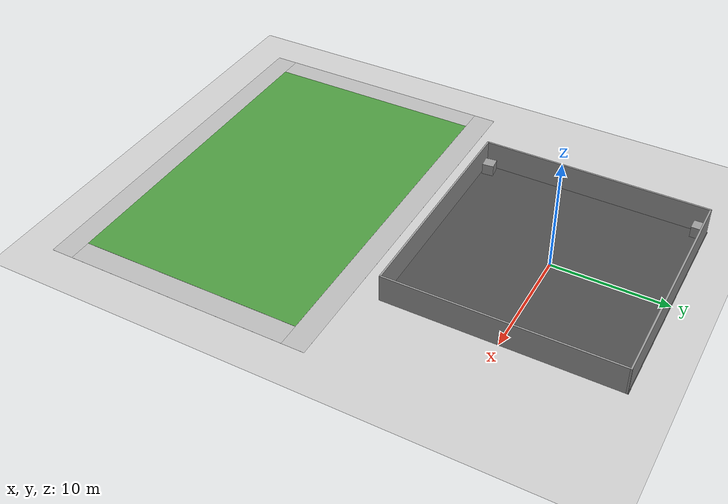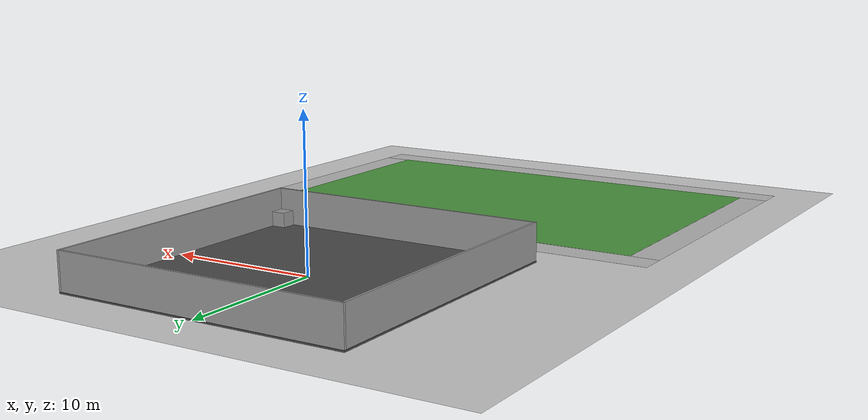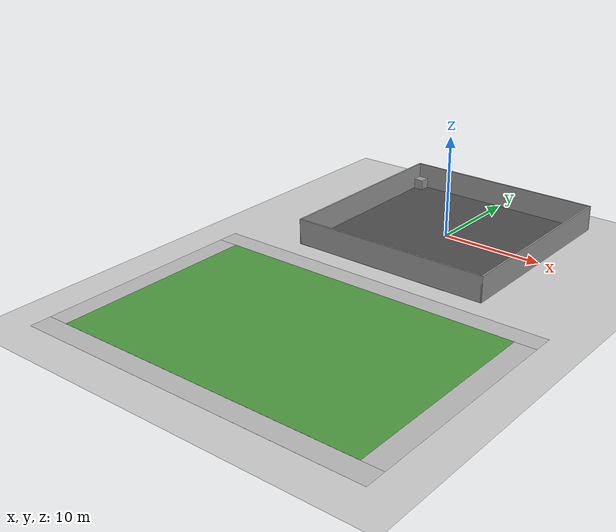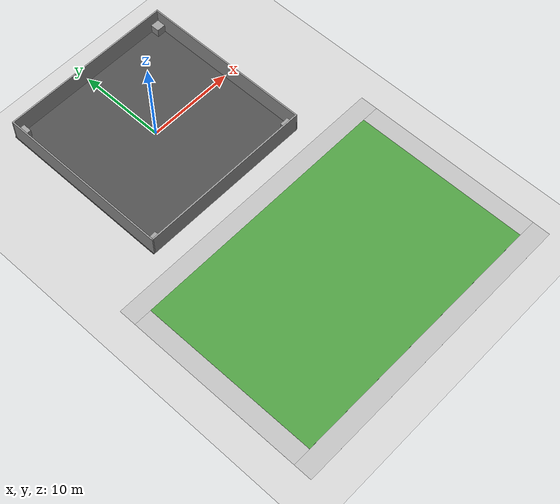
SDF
<sdf version="1.7">
 <world name="default">
  <light name="sun" type="directional">
   <pose>0 0 10 0 -0 0</pose>
   <diffuse>0.8 0.8 0.8 1</diffuse>
   <specular>0.2 0.2 0.2 1</specular>
   <attenuation>
    <range>1000</range>
    <constant>0.9</constant>
    <linear>0.01</linear>
    <quadratic>0.001</quadratic>
   </attenuation>
   <direction>-0.5 0.1 -0.9</direction>
   <spot><inner_angle>0</inner_angle><outer_angle>0</outer_angle><falloff>0</falloff></spot>
  </light>
  <model name="ground_plane">
   <static>1</static>
   <link name="link">
    <collision name="collision">
     <geometry><plane><normal>0 0 1</normal><size>100 100</size></plane></geometry>
     <surface><friction><ode><mu>100</mu><mu2>50</mu2></ode></friction></surface>
    </collision>
    <visual name="visual">
     <cast_shadows>0</cast_shadows>
     <geometry><plane><normal>0 0 1</normal><size>100 100</size></plane></geometry>
     <material>
      <script><uri>file://media/materials/scripts/gazebo.material</uri><name>Gazebo/Grey</name></script>
     </material>
    </visual>
   </link>
  </model>
  <gravity>0 0 -9.8</gravity>
  <magnetic_field>6e-06 2.3e-05 -4.2e-05</magnetic_field>
  <atmosphere type="adiabatic"/>
  <physics type="ode">
   <max_step_size>0.001</max_step_size>
   <real_time_factor>1</real_time_factor>
   <real_time_update_rate>1000</real_time_update_rate>
  </physics>
  <scene><ambient>0.4 0.4 0.4 1</ambient><background>0.7 0.7 0.7 1</background><shadows>1</shadows></scene>
  <audio><device>default</device></audio>
  <spherical_coordinates>
   <surface_model>EARTH_WGS84</surface_model>
   <latitude_deg>0</latitude_deg>
   <longitude_deg>0</longitude_deg>
   <elevation>0</elevation>
   <heading_deg>0</heading_deg>
  </spherical_coordinates>
  <model name="asphalt_plane">
   <static>1</static>
   <link name="link">
    <collision name="collision"><geometry><box><size>20 20 0.1</size></box></geometry></collision>
    <visual name="visual">
     <cast_shadows>0</cast_shadows>
     <geometry><box><size>20 20 0.1</size></box></geometry>
     <material>
      <script>
       <uri>model://asphalt_plane/materials/scripts</uri>
       <uri>model://asphalt_plane/materials/textures</uri>
       <name>vrc/asphalt</name>
      </script>
     </material>
    </visual>
   </link>
   <pose>0.027118 -0.028406 0 0 -0 0</pose>
  </model>
  <model name="4Walls">
   <pose>0.075 -0.075 0 0 -0 0</pose>
   <link name="Wall_17">
    <collision name="Wall_17_Collision">
     <geometry><box><size>20 0.15 2.5</size></box></geometry>
     <pose>0 0 1.25 0 -0 0</pose>
    </collision>
    <visual name="Wall_17_Visual">
     <pose>0 0 1.25 0 -0 0</pose>
     <geometry><box><size>20 0.15 2.5</size></box></geometry>
     <material>
      <script><uri>file://media/materials/scripts/gazebo.material</uri><name>Gazebo/Grey</name></script>
      <ambient>1 1 1 1</ambient>
     </material>
     <meta><layer>0</layer></meta>
    </visual>
    <pose>0 -9.925 0 0 -0 0</pose>
   </link>
   <link name="Wall_19">
    <collision name="Wall_19_Collision">
     <geometry><box><size>20 0.15 2.5</size></box></geometry>
     <pose>0 0 1.25 0 -0 0</pose>
    </collision>
    <visual name="Wall_19_Visual">
     <pose>0 0 1.25 0 -0 0</pose>
     <geometry><box><size>20 0.15 2.5</size></box></geometry>
     <material>
      <script><uri>file://media/materials/scripts/gazebo.material</uri><name>Gazebo/Grey</name></script>
      <ambient>1 1 1 1</ambient>
     </material>
     <meta><layer>0</layer></meta>
    </visual>
    <pose>9.925 -0 0 0 -0 1.5708</pose>
   </link>
   <link name="Wall_21">
    <collision name="Wall_21_Collision">
     <geometry><box><size>20 0.15 2.5</size></box></geometry>
     <pose>0 0 1.25 0 -0 0</pose>
    </collision>
    <visual name="Wall_21_Visual">
     <pose>0 0 1.25 0 -0 0</pose>
     <geometry><box><size>20 0.15 2.5</size></box></geometry>
     <material>
      <script><uri>file://media/materials/scripts/gazebo.material</uri><name>Gazebo/Grey</name></script>
      <ambient>1 1 1 1</ambient>
     </material>
     <meta><layer>0</layer></meta>
    </visual>
    <pose>0 9.925 0 0 -0 3.14159</pose>
   </link>
   <link name="Wall_22">
    <collision name="Wall_22_Collision">
     <geometry><box><size>20 0.15 2.5</size></box></geometry>
     <pose>0 0 1.25 0 -0 0</pose>
    </collision>
    <visual name="Wall_22_Visual">
     <pose>0 0 1.25 0 -0 0</pose>
     <geometry><box><size>20 0.15 2.5</size></box></geometry>
     <material>
      <script><uri>file://media/materials/scripts/gazebo.material</uri><name>Gazebo/Grey</name></script>
      <ambient>1 1 1 1</ambient>
     </material>
     <meta><layer>0</layer></meta>
    </visual>
    <pose>-9.925 -0 0 0 -0 -1.5708</pose>
   </link>
   <static>1</static>
  </model>
  <model name="unit_box">
   <pose>9.4068 -9.39921 0.55 0 -0 3.3e-05</pose>
   <link name="link">
    <inertial>
     <mass>1</mass>
     <inertia>
      <ixx>0.166667</ixx>
      <ixy>0</ixy>
      <ixz>0</ixz>
      <iyy>0.166667</iyy>
      <iyz>0</iyz>
      <izz>0.166667</izz>
     </inertia>
    </inertial>
    <collision name="collision"><geometry><box><size>1 1 1</size></box></geometry></collision>
    <visual name="visual">
     <geometry><box><size>1 1 1</size></box></geometry>
     <material>
      <script><name>Gazebo/Grey</name><uri>file://media/materials/scripts/gazebo.material</uri></script>
     </material>
    </visual>
   </link>
  </model>
  <model name="unit_box_clone">
   <pose>9.42472 9.27477 0.55 0 -0 4e-05</pose>
   <link name="link">
    <inertial>
     <mass>1</mass>
     <inertia>
      <ixx>0.166667</ixx>
      <ixy>0</ixy>
      <ixz>0</ixz>
      <iyy>0.166667</iyy>
      <iyz>0</iyz>
      <izz>0.166667</izz>
     </inertia>
    </inertial>
    <collision name="collision"><geometry><box><size>1 1 1</size></box></geometry></collision>
    <visual name="visual">
     <geometry><box><size>1 1 1</size></box></geometry>
     <material>
      <script><name>Gazebo/Grey</name><uri>file://media/materials/scripts/gazebo.material</uri></script>
     </material>
    </visual>
   </link>
  </model>
  <model name="unit_box_clone_clone">
   <pose>-9.26193 9.27499 0.55 0 -0 1.6e-05</pose>
   <link name="link">
    <inertial>
     <mass>1</mass>
     <inertia>
      <ixx>0.166667</ixx>
      <ixy>0</ixy>
      <ixz>0</ixz>
      <iyy>0.166667</iyy>
      <iyz>0</iyz>
      <izz>0.166667</izz>
     </inertia>
    </inertial>
    <collision name="collision"><geometry><box><size>1 1 1</size></box></geometry></collision>
    <visual name="visual">
     <geometry><box><size>1 1 1</size></box></geometry>
     <material>
      <script><name>Gazebo/Grey</name><uri>file://media/materials/scripts/gazebo.material</uri></script>
     </material>
    </visual>
   </link>
  </model>
  <model name="unit_box_clone_clone_clone">
   <pose>-8.97843 -9.37264 0.55 0 -0 0.11112</pose>
   <link name="link">
    <inertial>
     <mass>1</mass>
     <inertia>
      <ixx>0.166667</ixx>
      <ixy>0</ixy>
      <ixz>0</ixz>
      <iyy>0.166667</iyy>
      <iyz>0</iyz>
      <izz>0.166667</izz>
     </inertia>
    </inertial>
    <collision name="collision"><geometry><box><size>1 1 1</size></box></geometry></collision>
    <visual name="visual">
     <geometry><box><size>1 1 1</size></box></geometry>
     <material>
      <script><name>Gazebo/Grey</name><uri>file://media/materials/scripts/gazebo.material</uri></script>
     </material>
    </visual>
   </link>
  </model>
  <plugin name="gazebo_ros_state" filename="libgazebo_ros_state.so">
   <ros><namespace>/gazebo</namespace><update_rate>50.0</update_rate></ros>
  </plugin>
  <model name="Untitled_malakia">
   <model name="robocup_3d_field">
    <static>1</static>
    <link name="field">
     <pose>0 0 0.01 0 -0 0</pose>
     <collision name="collision">
      <geometry><plane><normal>0 0 1</normal><size>30 20</size></plane></geometry>
      <surface><friction><ode><mu>100</mu><mu2>50</mu2></ode></friction></surface>
     </collision>
     <visual name="base1">
      <pose>0 11 0.001 0 -0 0</pose>
      <cast_shadows>0</cast_shadows>
      <geometry><plane><normal>0 0 1</normal><size>34 2</size></plane></geometry>
      <material>
       <script>
        <uri>https://fuel.ignitionrobotics.org/1.0/nicolas/models/robocup 3d simulation field/1/files/materials/scripts/</uri>
        <uri>https://fuel.ignitionrobotics.org/1.0/nicolas/models/robocup 3d simulation field/1/files/materials/textures/</uri>
        <name>RoboCup/FieldBorder</name>
       </script>
      </material>
     </visual>
     <visual name="base2">
      <pose>0 -11 0.001 0 -0 0</pose>
      <cast_shadows>0</cast_shadows>
      <geometry><plane><normal>0 0 1</normal><size>34 2</size></plane></geometry>
      <material>
       <script>
        <uri>https://fuel.ignitionrobotics.org/1.0/nicolas/models/robocup 3d simulation field/1/files/materials/scripts/</uri>
        <uri>https://fuel.ignitionrobotics.org/1.0/nicolas/models/robocup 3d simulation field/1/files/materials/textures/</uri>
        <name>RoboCup/FieldBorder</name>
       </script>
      </material>
     </visual>
     <visual name="base3">
      <pose>16 0 0.001 0 -0 0</pose>
      <cast_shadows>0</cast_shadows>
      <geometry><plane><normal>0 0 1</normal><size>2 20</size></plane></geometry>
      <material>
       <script>
        <uri>https://fuel.ignitionrobotics.org/1.0/nicolas/models/robocup 3d simulation field/1/files/materials/scripts/</uri>
        <uri>https://fuel.ignitionrobotics.org/1.0/nicolas/models/robocup 3d simulation field/1/files/materials/textures/</uri>
        <name>RoboCup/FieldBorder</name>
       </script>
      </material>
     </visual>
     <visual name="base4">
      <pose>-16 0 0.001 0 -0 0</pose>
      <cast_shadows>0</cast_shadows>
      <geometry><plane><normal>0 0 1</normal><size>2 20</size></plane></geometry>
      <material>
       <script>
        <uri>https://fuel.ignitionrobotics.org/1.0/nicolas/models/robocup 3d simulation field/1/files/materials/scripts/</uri>
        <uri>https://fuel.ignitionrobotics.org/1.0/nicolas/models/robocup 3d simulation field/1/files/materials/textures/</uri>
        <name>RoboCup/FieldBorder</name>
       </script>
      </material>
     </visual>
     <visual name="carpet">
      <cast_shadows>0</cast_shadows>
      <geometry><plane><normal>0 0 1</normal><size>30 20</size></plane></geometry>
      <material>
       <script>
        <uri>https://fuel.ignitionrobotics.org/1.0/nicolas/models/robocup 3d simulation field/1/files/materials/scripts/</uri>
        <uri>https://fuel.ignitionrobotics.org/1.0/nicolas/models/robocup 3d simulation field/1/files/materials/textures/</uri>
        <name>RoboCup/Grass</name>
       </script>
      </material>
     </visual>
    </link>
    <pose>0.598914 -24.1971 0 0 -0 0</pose>
   </model>
   <static>0</static>
  </model>
 </world>
</sdf>
